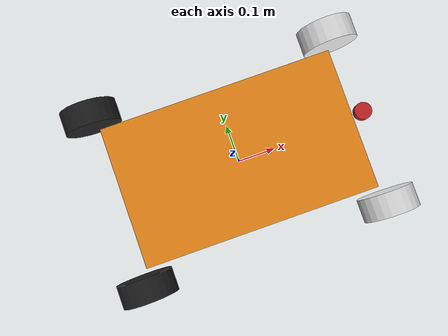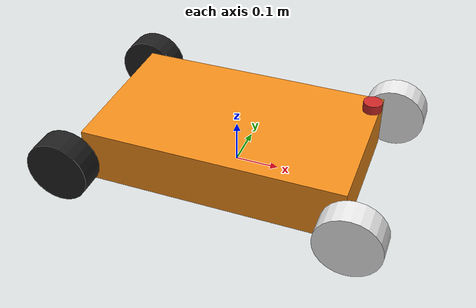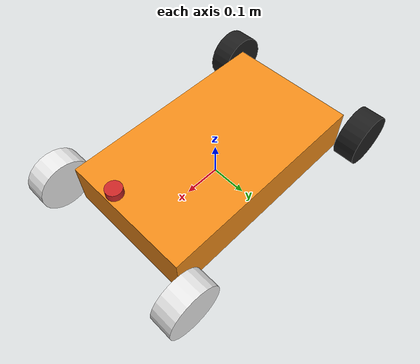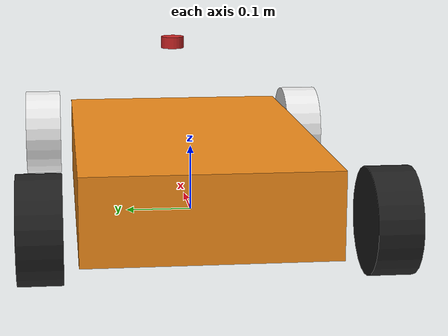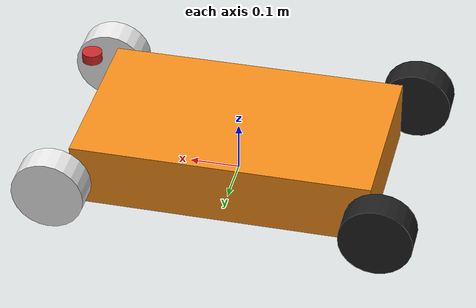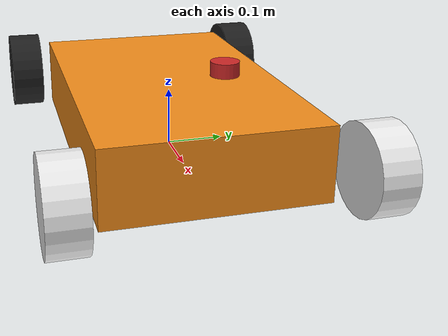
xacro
<?xml version="1.0"?>
<!-- Basic differential drive mobile base -->
<robot xmlns:xacro="http://www.ros.org/wiki/xacro" name="diffdrive_robot">
  <xacro:arg name="prefix" default="" />

  <xacro:include filename="$(find arduino_ros2_control)/urdf/diffbot_description.urdf.xacro" />

  <!-- Import Rviz colors -->
  <xacro:include filename="$(find arduino_ros2_control)/urdf/diffbot.materials.xacro" />

  <!-- Import diffbot ros2_control description -->
  <xacro:include filename="$(find arduino_ros2_control)/ros2_control/diffbot.ros2_control.xacro" />

  <xacro:diffbot prefix="$(arg prefix)" />

  <xacro:diffbot_ros2_control
    name="DiffBot" prefix="$(arg prefix)" />

</robot>

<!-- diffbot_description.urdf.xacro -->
<robot xmlns:xacro="http://www.ros.org/wiki/xacro">

  <xacro:macro name="diffbot" params="prefix">

    <xacro:property name="PI" value="3.1415926535897931"/>
    <xacro:property name="base_mass" value="12.0" />
    <xacro:property name="base_width" value="0.60" />
    <xacro:property name="base_length" value="0.36" />
    <xacro:property name="base_height" value="0.125" />
    <xacro:property name="drive_sprocket_mass" value="0.5" />
    <xacro:property name="drive_sprocket_width" value="0.06" />
    <xacro:property name="drive_sprocket_radius" value="0.073" />
    <xacro:property name="z_offset" value="-${base_height/2}" />

    <link name="base_link">
      <collision>
        <origin xyz="0 0 0" rpy="0 0 0"/>
        <geometry>
          <box size="${base_width} ${base_length} ${base_height}"/>
        </geometry>
      </collision>
      <visual>
        <origin xyz="0 0 ${base_height/2}" rpy="0 0 0"/>
        <geometry>
          <box size="${base_width} ${base_length} ${base_height}"/>
        </geometry>
        <material name="orange"/>
      </visual>
      <inertial>
        <origin xyz="0 0 0" rpy="0 0 0"/>
        <mass value="${base_mass}"/>
        <inertia
          ixx="${base_mass / 12.0 * (base_length*base_length + base_height*base_height)}"
          ixy="0.0"
          ixz="0.0"
          iyy="${base_mass / 12.0 * (base_height*base_height + base_width*base_width)}"
          iyz="0.0"
          izz="${base_mass / 12.0 * (base_width*base_width + base_length*base_length)}"/>
      </inertial>
    </link>

    <joint name="base_footprint_joint" type="fixed">
        <parent link="base_link"/>
        <child link="base_footprint"/>
        <origin xyz="0 0 0" rpy="0 0 0"/>
    </joint>

    <link name="base_footprint">
    </link>

    <joint name="${prefix}left_track_joint" type="continuous">
      <parent link="${prefix}base_link"/>
      <child link="${prefix}left_drive_sprocket"/>
      <origin xyz="-${base_width / 2.0 + drive_sprocket_radius / 3.0} -${base_length / 2.0 + 0.05} ${base_height / 2}" rpy="0 0 0"/>
      <axis xyz="0 1 0"/>
      <dynamics damping="0.2"/>
      <limit effort="100" velocity="1.0"/>
    </joint>
    <link name="${prefix}left_drive_sprocket">
      <collision>
          <origin xyz="0 0 0" rpy="${PI/2} 0 0"/>
      <geometry>
      <cylinder length="${drive_sprocket_width}" radius="${drive_sprocket_radius}"/>
      </geometry>
    <surface>
    <friction>
      <ode>
        <mu>1.0</mu>
        <mu2>0.5</mu2>
        <slip1>0.0</slip1>
        <slip2>0.0</slip2>
      </ode>
    </friction>
            <contact>
              <ode>
                <soft_cfm>0.0</soft_cfm>
                <soft_erp>0.2</soft_erp>
                <kp>1e+13</kp>
                <kd>1.0</kd>
                <max_vel>0.01</max_vel>
                <min_depth>0.001</min_depth>
              </ode>
            </contact>
        </surface>
        <geometry>
          <cylinder length="${drive_sprocket_width}" radius="${drive_sprocket_radius}"/>
        </geometry>
      </collision>
      <visual>
        <origin xyz="0 0 0" rpy="${PI/2} 0 0"/>
        <geometry>
          <cylinder length="${drive_sprocket_width}" radius="${drive_sprocket_radius}"/>
        </geometry>
        <material name="black"/>
      </visual>
      <inertial>
        <origin xyz="0 0 0" rpy="${PI/2} 0 0"/>
        <mass value="${drive_sprocket_mass}"/>
        <inertia
          ixx="${drive_sprocket_mass / 12.0 * (3*drive_sprocket_radius*drive_sprocket_radius + drive_sprocket_width*drive_sprocket_width)}"
          ixy="0.0"
          ixz="0.0"
          iyy="${drive_sprocket_mass / 12.0 * (3*drive_sprocket_radius*drive_sprocket_radius + drive_sprocket_width*drive_sprocket_width)}"
          iyz="0.0"
          izz="${drive_sprocket_mass / 2.0 * drive_sprocket_radius*drive_sprocket_radius}"/>
      </inertial>
    </link>

    <joint name="${prefix}right_track_joint" type="continuous">
      <parent link="${prefix}base_link"/>
      <child link="${prefix}right_drive_sprocket"/>
      <origin xyz="-${base_width / 2.0 + drive_sprocket_radius / 3.0} ${base_length / 2.0 + 0.05} ${base_height / 2}" rpy="0 0 0"/>
      <axis xyz="0 1 0"/>
      <dynamics damping="0.2"/>
      <limit effort="100" velocity="1.0"/>
    </joint>
    <link name="${prefix}right_drive_sprocket">
      <collision>
          <origin xyz="0 0 0" rpy="${PI/2} 0 0"/>
      <geometry>
      <cylinder length="${drive_sprocket_width}" radius="${drive_sprocket_radius}"/>
      </geometry>
    <surface>
    <friction>
      <ode>
        <mu>0.6</mu>
        <mu2>0.3</mu2>
        <slip1>0.0</slip1>
        <slip2>0.0</slip2>
      </ode>
    </friction>
            <contact>
              <ode>
                <soft_cfm>0.0</soft_cfm>
                <soft_erp>0.2</soft_erp>
                <kp>1e+13</kp>
                <kd>1.0</kd>
                <max_vel>0.01</max_vel>
                <min_depth>0.001</min_depth>
              </ode>
            </contact>
        </surface>
      </collision>
      <visual>
        <origin xyz="0 0 0" rpy="${PI/2} 0 0"/>
        <geometry>
          <cylinder length="${drive_sprocket_width}" radius="${drive_sprocket_radius}"/>
        </geometry>
        <material name="black"/>
      </visual>
      <inertial>
        <origin xyz="0 0 0" rpy="${PI/2} 0 0"/>
        <mass value="${drive_sprocket_mass}"/>
        <inertia
          ixx="${drive_sprocket_mass / 12.0 * (3*drive_sprocket_radius*drive_sprocket_radius + drive_sprocket_width*drive_sprocket_width)}"
          ixy="0.0"
          ixz="0.0"
          iyy="${drive_sprocket_mass / 12.0 * (3*drive_sprocket_radius*drive_sprocket_radius + drive_sprocket_width*drive_sprocket_width)}"
          iyz="0.0"
          izz="${drive_sprocket_mass / 2.0 * drive_sprocket_radius*drive_sprocket_radius}"/>
      </inertial>
    </link>

    <joint name="${prefix}front_right_track_joint" type="continuous">
      <parent link="${prefix}base_link"/>
      <child link="${prefix}front_right_idler"/>
      <origin xyz="${base_width / 2.0 + drive_sprocket_radius / 3.0} ${base_length / 2.0 + 0.05} ${base_height / 2}" rpy="0 0 0"/>
      <axis xyz="0 1 0"/>
      <mimic joint="${prefix}left_track_joint" multiplier="1.0"/>
    </joint>
    <link name="${prefix}front_right_idler">
      <collision>
        <origin xyz="0 0 0" rpy="${PI/2} 0 0"/>
      <geometry>
      <cylinder length="${drive_sprocket_width}" radius="${drive_sprocket_radius}"/>
      </geometry>
    <surface>
    <friction>
      <ode>
        <mu>0.6</mu>
        <mu2>0.3</mu2>
        <slip1>0.0</slip1>
        <slip2>0.0</slip2>
      </ode>
    </friction>
            <contact>
              <ode>
                <soft_cfm>0.0</soft_cfm>
                <soft_erp>0.2</soft_erp>
                <kp>1e+13</kp>
                <kd>1.0</kd>
                <max_vel>0.01</max_vel>
                <min_depth>0.001</min_depth>
              </ode>
            </contact>
        </surface>
      </collision>
      <visual>
        <origin xyz="0 0 0" rpy="${PI/2} 0 0"/>
        <geometry>
          <cylinder length="${drive_sprocket_width}" radius="${drive_sprocket_radius}"/>
        </geometry>
        <material name="white"/>
      </visual>
      <inertial>
        <origin xyz="0 0 0" rpy="${PI/2} 0 0"/>
        <mass value="${drive_sprocket_mass}"/>
        <inertia
          ixx="${drive_sprocket_mass / 12.0 * (3*drive_sprocket_radius*drive_sprocket_radius + drive_sprocket_width*drive_sprocket_width)}"
          ixy="0.0"
          ixz="0.0"
          iyy="${drive_sprocket_mass / 12.0 * (3*drive_sprocket_radius*drive_sprocket_radius + drive_sprocket_width*drive_sprocket_width)}"
          iyz="0.0"
          izz="${drive_sprocket_mass / 2.0 * drive_sprocket_radius*drive_sprocket_radius}"/>
      </inertial>
    </link>

    <joint name="${prefix}front_left_track_joint" type="continuous">
      <parent link="${prefix}base_link"/>
      <child link="${prefix}front_left_idler"/>
      <origin xyz="${base_width / 2.0 + drive_sprocket_radius / 3.0} -${base_length / 2.0 + 0.05} ${base_height / 2}" rpy="0 0 0"/>
      <axis xyz="0 1 0"/>
      <mimic joint="${prefix}left_track_joint" multiplier="1.0"/>
    </joint>
    <link name="${prefix}front_left_idler">
      <collision>
      <origin xyz="0 0 0" rpy="${PI/2} 0 0"/>
      <geometry>
      <cylinder length="${drive_sprocket_width}" radius="${drive_sprocket_radius}"/>
      </geometry>
    <surface>
    <friction>
      <ode>
        <mu>0.6</mu>
        <mu2>0.3</mu2>
        <slip1>0.0</slip1>
        <slip2>0.0</slip2>
      </ode>
    </friction>
            <contact>
              <ode>
                <soft_cfm>0.0</soft_cfm>
                <soft_erp>0.2</soft_erp>
                <kp>1e+13</kp>
                <kd>1.0</kd>
                <max_vel>0.01</max_vel>
                <min_depth>0.001</min_depth>
              </ode>
            </contact>
        </surface>
      </collision>
      <visual>
        <origin xyz="0 0 0" rpy="${PI/2} 0 0"/>
        <geometry>
          <cylinder length="${drive_sprocket_width}" radius="${drive_sprocket_radius}"/>
        </geometry>
        <material name="white"/>
      </visual>
      <inertial>
        <origin xyz="0 0 0" rpy="${PI/2} 0 0"/>
        <mass value="${drive_sprocket_mass}"/>
        <inertia
          ixx="${drive_sprocket_mass / 12.0 * (3*drive_sprocket_radius*drive_sprocket_radius + drive_sprocket_width*drive_sprocket_width)}"
          ixy="0.0"
          ixz="0.0"
          iyy="${drive_sprocket_mass / 12.0 * (3*drive_sprocket_radius*drive_sprocket_radius + drive_sprocket_width*drive_sprocket_width)}"
          iyz="0.0"
          izz="${drive_sprocket_mass / 2.0 * drive_sprocket_radius*drive_sprocket_radius}"/>
      </inertial>
    </link>

    <joint name="lidar_joint" type="fixed">
  <parent link="base_link"/>
  <child link="lidar"/>
  <origin xyz="0.3 0 0.225" rpy="0 0 ${PI}"/>
</joint>
<link name="lidar">
  <visual>
    <geometry>
      <cylinder length="0.02" radius="0.02"/>
    </geometry>
    <material name="red"/>
  </visual>
</link>

  </xacro:macro>
</robot>
